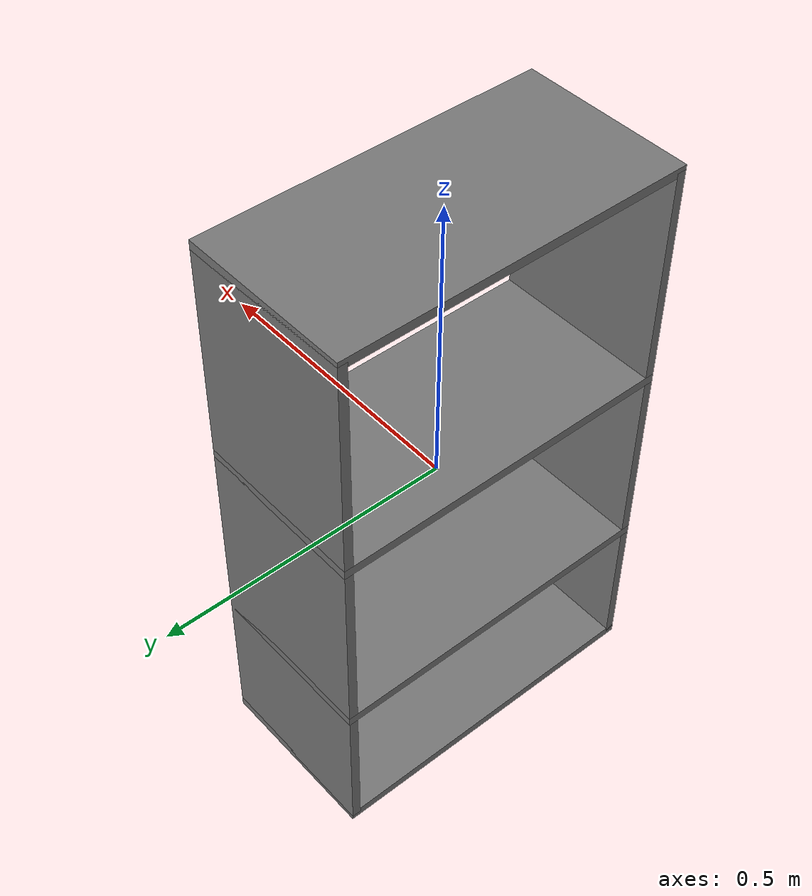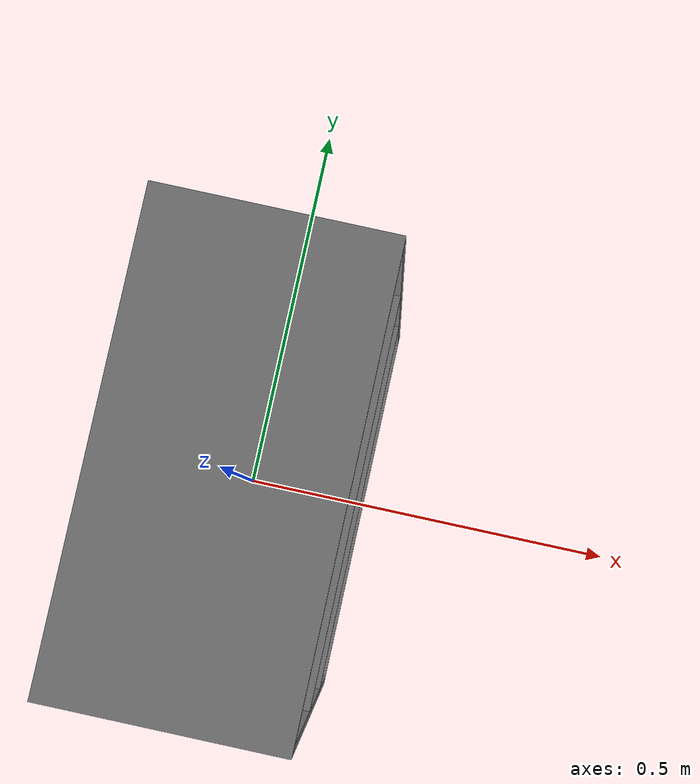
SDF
<?xml version="1.0"?>
<sdf version="1.7">
  <model name="shelves">
    <link name="shelves_body">
      <visual name="right_wall">
        <material>
          <diffuse>0.471 0.471 0.471 1</diffuse>
        </material>
        <pose> 0 0.292 0 0 0 0</pose>
        <geometry>
          <box>
            <size>0.3 0.016 1.000</size>
          </box>
        </geometry>
      </visual>
      <visual name="left_wall">
        <material>
          <diffuse>0.471 0.471 0.471 1</diffuse>
        </material>
        <pose> 0 -0.292 0 0 0 0</pose>
        <geometry>
          <box>
            <size>0.3 0.016 1.000</size>
          </box>
        </geometry>
      </visual>
      <collision name="right_wall">
        <pose> 0 0.292 0 0 0 0</pose>
        <geometry>
          <box>
            <size>0.3 0.016 1.000</size>
          </box>
        </geometry>
      </collision>
      <collision name="left_wall">
        <pose> 0 -0.292 0 0 0 0</pose>
        <geometry>
          <box>
            <size>0.3 0.016 1.000</size>
          </box>
        </geometry>
      </collision>
    </link>
    <link name="top_and_bottom">
      <visual name="bottom">
        <material>
          <diffuse>0.471 0.471 0.471 1</diffuse>
        </material>
        <pose> 0 0 -0.5 0 0 0</pose>
        <geometry>
          <box>
            <size>0.3 0.6 0.016</size>
          </box>
        </geometry>
      </visual>
      <visual name="top">
        <material>
          <diffuse>0.471 0.471 0.471 1</diffuse>
        </material>
        <pose> 0 0 0.5 0 0 0</pose>
        <geometry>
          <box>
            <size>0.3 0.6 0.016</size>
          </box>
        </geometry>
      </visual>
      <visual name="shelf_lower">
        <material>
          <diffuse>0.471 0.471 0.471 1</diffuse>
        </material>
        <pose> 0 0 -0.23165 0 0 0</pose>
        <geometry>
          <box>
            <size>0.3 0.6 0.016</size>
          </box>
        </geometry>
      </visual>
      <visual name="shelf_upper">
        <material>
          <diffuse>0.471 0.471 0.471 1</diffuse>
        </material>
        <pose> 0 0 0.115825 0 0 0</pose>
        <geometry>
          <box>
            <size>0.3 0.6 0.016</size>
          </box>
        </geometry>
      </visual>
      <collision name="bottom">
        <pose> 0 0 -0.5 0 0 0</pose>
        <geometry>
          <box>
            <size>0.3 0.6 0.016</size>
          </box>
        </geometry>
      </collision>
      <collision name="top">
        <pose> 0 0 0.5 0 0 0</pose>
        <geometry>
          <box>
            <size>0.3 0.6 0.016</size>
          </box>
        </geometry>
      </collision>
      <collision name="shelf_lower">
        <pose> 0 0 -0.23165 0 0 0</pose>
        <geometry>
          <box>
            <size>0.3 0.6 0.016</size>
          </box>
        </geometry>
      </collision>
      <collision name="shelf_upper">
        <pose> 0 0 0.115825 0 0 0</pose>
        <geometry>
          <box>
            <size>0.3 0.6 0.016</size>
          </box>
        </geometry>
      </collision>
    </link>
    <!-- joint between bottom_top and world -->
    <joint name="top_and_bottom_shelves_body" type="fixed">
      <child>top_and_bottom</child>
      <parent>shelves_body</parent>
    </joint>
  </model>
</sdf>
